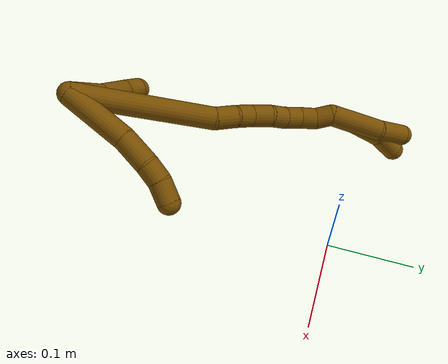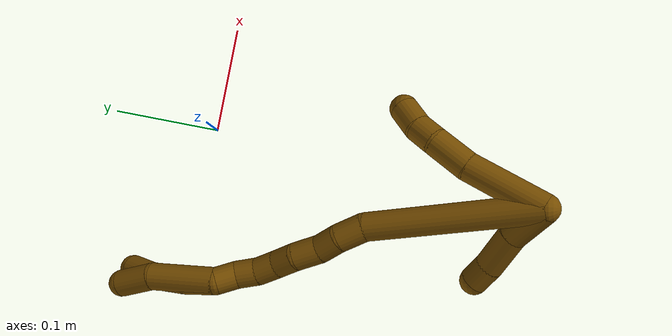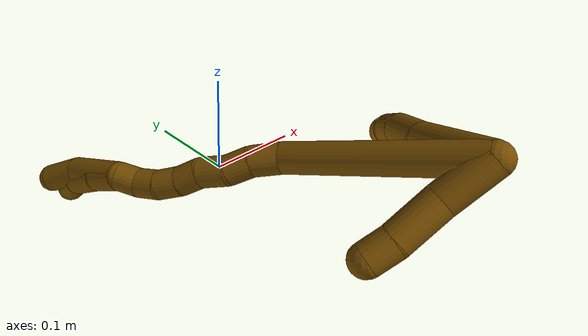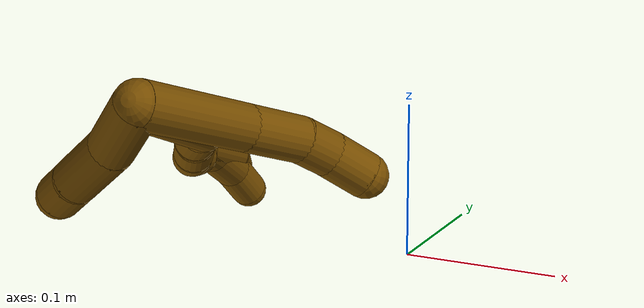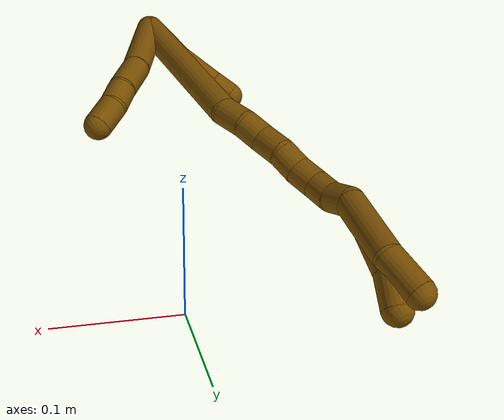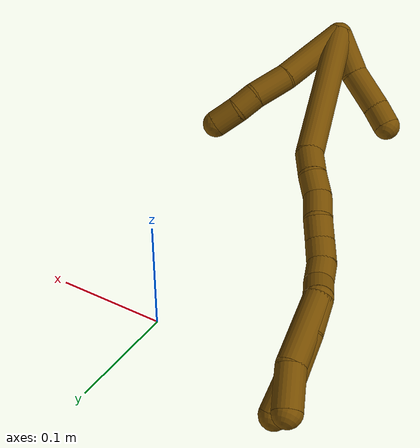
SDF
<sdf version="1.7">
 <world name="default">
  <model name="12">
   <static>0</static>
   <link name="12">
    <collision name="collision-cylinder-e_1_2_8">
     <pose>0.011688 -0.012124 -0.031023 2.76904 0.337482 1.47001</pose>
     <geometry><cylinder><radius>0.0125</radius><length>0.070598</length></cylinder></geometry>
     <surface>
      <friction><ode><mu>1.16</mu><mu2>1.16</mu2><slip1>0</slip1><slip2>0</slip2></ode></friction>
      <contact><ode><kp>1e+06</kp><kd>1</kd><max_vel>0</max_vel><min_depth>0.001</min_depth></ode></contact>
     </surface>
    </collision>
    <visual name="visual-cylinder-e_1_2_8">
     <pose>0.011688 -0.012124 -0.031023 2.76904 0.337482 1.47001</pose>
     <geometry><cylinder><radius>0.0125</radius><length>0.070598</length></cylinder></geometry>
     <material><ambient>0.466667 0.301961 0 1</ambient></material>
    </visual>
    <collision name="collision-cylinder-e_2_8_9">
     <pose>0.030336 -0.032311 -0.075783 2.61077 0.411926 1.31061</pose>
     <geometry><cylinder><radius>0.0125</radius><length>0.034765</length></cylinder></geometry>
     <surface>
      <friction><ode><mu>1.16</mu><mu2>1.16</mu2><slip1>0</slip1><slip2>0</slip2></ode></friction>
      <contact><ode><kp>1e+06</kp><kd>1</kd><max_vel>0</max_vel><min_depth>0.001</min_depth></ode></contact>
     </surface>
    </collision>
    <visual name="visual-cylinder-e_2_8_9">
     <pose>0.030336 -0.032311 -0.075783 2.61077 0.411926 1.31061</pose>
     <geometry><cylinder><radius>0.0125</radius><length>0.034765</length></cylinder></geometry>
     <material><ambient>0.466667 0.301961 0 1</ambient></material>
    </visual>
    <collision name="collision-cylinder-e_3_9_10">
     <pose>0.039718 -0.046409 -0.097569 2.49832 0.236325 0.684523</pose>
     <geometry><cylinder><radius>0.0125</radius><length>0.020695</length></cylinder></geometry>
     <surface>
      <friction><ode><mu>1.16</mu><mu2>1.16</mu2><slip1>0</slip1><slip2>0</slip2></ode></friction>
      <contact><ode><kp>1e+06</kp><kd>1</kd><max_vel>0</max_vel><min_depth>0.001</min_depth></ode></contact>
     </surface>
    </collision>
    <visual name="visual-cylinder-e_3_9_10">
     <pose>0.039718 -0.046409 -0.097569 2.49832 0.236325 0.684523</pose>
     <geometry><cylinder><radius>0.0125</radius><length>0.020695</length></cylinder></geometry>
     <material><ambient>0.466667 0.301961 0 1</ambient></material>
    </visual>
    <collision name="collision-cylinder-e_4_10_6">
     <pose>0.044784 -0.061521 -0.112959 2.2508 0.222695 0.460129</pose>
     <geometry><cylinder><radius>0.0125</radius><length>0.023942</length></cylinder></geometry>
     <surface>
      <friction><ode><mu>1.16</mu><mu2>1.16</mu2><slip1>0</slip1><slip2>0</slip2></ode></friction>
      <contact><ode><kp>1e+06</kp><kd>1</kd><max_vel>0</max_vel><min_depth>0.001</min_depth></ode></contact>
     </surface>
    </collision>
    <visual name="visual-cylinder-e_4_10_6">
     <pose>0.044784 -0.061521 -0.112959 2.2508 0.222695 0.460129</pose>
     <geometry><cylinder><radius>0.0125</radius><length>0.023942</length></cylinder></geometry>
     <material><ambient>0.466667 0.301961 0 1</ambient></material>
    </visual>
    <collision name="collision-cylinder-e_1_2_11">
     <pose>-0.014225 0.002447 -0.014329 -2.97243 -0.774595 2.73172</pose>
     <geometry><cylinder><radius>0.0125</radius><length>0.040677</length></cylinder></geometry>
     <surface>
      <friction><ode><mu>1.16</mu><mu2>1.16</mu2><slip1>0</slip1><slip2>0</slip2></ode></friction>
      <contact><ode><kp>1e+06</kp><kd>1</kd><max_vel>0</max_vel><min_depth>0.001</min_depth></ode></contact>
     </surface>
    </collision>
    <visual name="visual-cylinder-e_1_2_11">
     <pose>-0.014225 0.002447 -0.014329 -2.97243 -0.774595 2.73172</pose>
     <geometry><cylinder><radius>0.0125</radius><length>0.040677</length></cylinder></geometry>
     <material><ambient>0.466667 0.301961 0 1</ambient></material>
    </visual>
    <collision name="collision-cylinder-e_2_11_12">
     <pose>-0.043189 0.009676 -0.03985 -2.73788 -0.880484 2.32195</pose>
     <geometry><cylinder><radius>0.0125</radius><length>0.038228</length></cylinder></geometry>
     <surface>
      <friction><ode><mu>1.16</mu><mu2>1.16</mu2><slip1>0</slip1><slip2>0</slip2></ode></friction>
      <contact><ode><kp>1e+06</kp><kd>1</kd><max_vel>0</max_vel><min_depth>0.001</min_depth></ode></contact>
     </surface>
    </collision>
    <visual name="visual-cylinder-e_2_11_12">
     <pose>-0.043189 0.009676 -0.03985 -2.73788 -0.880484 2.32195</pose>
     <geometry><cylinder><radius>0.0125</radius><length>0.038228</length></cylinder></geometry>
     <material><ambient>0.466667 0.301961 0 1</ambient></material>
    </visual>
    <collision name="collision-cylinder-e_3_12_5">
     <pose>-0.065047 0.017437 -0.058231 -2.74856 -0.741119 2.19449</pose>
     <geometry><cylinder><radius>0.0125</radius><length>0.021095</length></cylinder></geometry>
     <surface>
      <friction><ode><mu>1.16</mu><mu2>1.16</mu2><slip1>0</slip1><slip2>0</slip2></ode></friction>
      <contact><ode><kp>1e+06</kp><kd>1</kd><max_vel>0</max_vel><min_depth>0.001</min_depth></ode></contact>
     </surface>
    </collision>
    <visual name="visual-cylinder-e_3_12_5">
     <pose>-0.065047 0.017437 -0.058231 -2.74856 -0.741119 2.19449</pose>
     <geometry><cylinder><radius>0.0125</radius><length>0.021095</length></cylinder></geometry>
     <material><ambient>0.466667 0.301961 0 1</ambient></material>
    </visual>
    <collision name="collision-cylinder-e_1_2_13">
     <pose>-0.001927 0.010126 -0.073971 -3.00555 -0.025804 0.374346</pose>
     <geometry><cylinder><radius>0.0125</radius><length>0.149372</length></cylinder></geometry>
     <surface>
      <friction><ode><mu>1.16</mu><mu2>1.16</mu2><slip1>0</slip1><slip2>0</slip2></ode></friction>
      <contact><ode><kp>1e+06</kp><kd>1</kd><max_vel>0</max_vel><min_depth>0.001</min_depth></ode></contact>
     </surface>
    </collision>
    <visual name="visual-cylinder-e_1_2_13">
     <pose>-0.001927 0.010126 -0.073971 -3.00555 -0.025804 0.374346</pose>
     <geometry><cylinder><radius>0.0125</radius><length>0.149372</length></cylinder></geometry>
     <material><ambient>0.466667 0.301961 0 1</ambient></material>
    </visual>
    <collision name="collision-cylinder-e_2_13_14">
     <pose>-0.006435 0.024638 -0.159154 -2.76867 -0.211183 1.02372</pose>
     <geometry><cylinder><radius>0.0125</radius><length>0.024624</length></cylinder></geometry>
     <surface>
      <friction><ode><mu>1.16</mu><mu2>1.16</mu2><slip1>0</slip1><slip2>0</slip2></ode></friction>
      <contact><ode><kp>1e+06</kp><kd>1</kd><max_vel>0</max_vel><min_depth>0.001</min_depth></ode></contact>
     </surface>
    </collision>
    <visual name="visual-cylinder-e_2_13_14">
     <pose>-0.006435 0.024638 -0.159154 -2.76867 -0.211183 1.02372</pose>
     <geometry><cylinder><radius>0.0125</radius><length>0.024624</length></cylinder></geometry>
     <material><ambient>0.466667 0.301961 0 1</ambient></material>
    </visual>
    <collision name="collision-cylinder-e_3_14_15">
     <pose>-0.013471 0.031645 -0.179391 -2.85898 -0.442681 2.01413</pose>
     <geometry><cylinder><radius>0.0125</radius><length>0.020803</length></cylinder></geometry>
     <surface>
      <friction><ode><mu>1.16</mu><mu2>1.16</mu2><slip1>0</slip1><slip2>0</slip2></ode></friction>
      <contact><ode><kp>1e+06</kp><kd>1</kd><max_vel>0</max_vel><min_depth>0.001</min_depth></ode></contact>
     </surface>
    </collision>
    <visual name="visual-cylinder-e_3_14_15">
     <pose>-0.013471 0.031645 -0.179391 -2.85898 -0.442681 2.01413</pose>
     <geometry><cylinder><radius>0.0125</radius><length>0.020803</length></cylinder></geometry>
     <material><ambient>0.466667 0.301961 0 1</ambient></material>
    </visual>
    <collision name="collision-cylinder-e_4_15_16">
     <pose>-0.019809 0.037591 -0.199683 -2.85464 -0.158894 1.00734</pose>
     <geometry><cylinder><radius>0.0125</radius><length>0.023794</length></cylinder></geometry>
     <surface>
      <friction><ode><mu>1.16</mu><mu2>1.16</mu2><slip1>0</slip1><slip2>0</slip2></ode></friction>
      <contact><ode><kp>1e+06</kp><kd>1</kd><max_vel>0</max_vel><min_depth>0.001</min_depth></ode></contact>
     </surface>
    </collision>
    <visual name="visual-cylinder-e_4_15_16">
     <pose>-0.019809 0.037591 -0.199683 -2.85464 -0.158894 1.00734</pose>
     <geometry><cylinder><radius>0.0125</radius><length>0.023794</length></cylinder></geometry>
     <material><ambient>0.466667 0.301961 0 1</ambient></material>
    </visual>
    <collision name="collision-cylinder-e_5_16_17">
     <pose>-0.025671 0.042205 -0.220313 -3.00473 -0.398463 2.48712</pose>
     <geometry><cylinder><radius>0.0125</radius><length>0.02051</length></cylinder></geometry>
     <surface>
      <friction><ode><mu>1.16</mu><mu2>1.16</mu2><slip1>0</slip1><slip2>0</slip2></ode></friction>
      <contact><ode><kp>1e+06</kp><kd>1</kd><max_vel>0</max_vel><min_depth>0.001</min_depth></ode></contact>
     </surface>
    </collision>
    <visual name="visual-cylinder-e_5_16_17">
     <pose>-0.025671 0.042205 -0.220313 -3.00473 -0.398463 2.48712</pose>
     <geometry><cylinder><radius>0.0125</radius><length>0.02051</length></cylinder></geometry>
     <material><ambient>0.466667 0.301961 0 1</ambient></material>
    </visual>
    <collision name="collision-cylinder-e_6_17_18">
     <pose>-0.032243 0.04621 -0.239372 -2.86854 -0.252092 1.49007</pose>
     <geometry><cylinder><radius>0.0125</radius><length>0.020794</length></cylinder></geometry>
     <surface>
      <friction><ode><mu>1.16</mu><mu2>1.16</mu2><slip1>0</slip1><slip2>0</slip2></ode></friction>
      <contact><ode><kp>1e+06</kp><kd>1</kd><max_vel>0</max_vel><min_depth>0.001</min_depth></ode></contact>
     </surface>
    </collision>
    <visual name="visual-cylinder-e_6_17_18">
     <pose>-0.032243 0.04621 -0.239372 -2.86854 -0.252092 1.49007</pose>
     <geometry><cylinder><radius>0.0125</radius><length>0.020794</length></cylinder></geometry>
     <material><ambient>0.466667 0.301961 0 1</ambient></material>
    </visual>
    <collision name="collision-cylinder-e_7_18_19">
     <pose>-0.034814 0.05134 -0.258805 -2.89851 0.002261 -0.018507</pose>
     <geometry><cylinder><radius>0.0125</radius><length>0.020065</length></cylinder></geometry>
     <surface>
      <friction><ode><mu>1.16</mu><mu2>1.16</mu2><slip1>0</slip1><slip2>0</slip2></ode></friction>
      <contact><ode><kp>1e+06</kp><kd>1</kd><max_vel>0</max_vel><min_depth>0.001</min_depth></ode></contact>
     </surface>
    </collision>
    <visual name="visual-cylinder-e_7_18_19">
     <pose>-0.034814 0.05134 -0.258805 -2.89851 0.002261 -0.018507</pose>
     <geometry><cylinder><radius>0.0125</radius><length>0.020065</length></cylinder></geometry>
     <material><ambient>0.466667 0.301961 0 1</ambient></material>
    </visual>
    <collision name="collision-cylinder-e_8_19_1">
     <pose>-0.033371 0.058893 -0.277026 -2.59699 0.142146 -0.49927</pose>
     <geometry><cylinder><radius>0.0125</radius><length>0.020038</length></cylinder></geometry>
     <surface>
      <friction><ode><mu>1.16</mu><mu2>1.16</mu2><slip1>0</slip1><slip2>0</slip2></ode></friction>
      <contact><ode><kp>1e+06</kp><kd>1</kd><max_vel>0</max_vel><min_depth>0.001</min_depth></ode></contact>
     </surface>
    </collision>
    <visual name="visual-cylinder-e_8_19_1">
     <pose>-0.033371 0.058893 -0.277026 -2.59699 0.142146 -0.49927</pose>
     <geometry><cylinder><radius>0.0125</radius><length>0.020038</length></cylinder></geometry>
     <material><ambient>0.466667 0.301961 0 1</ambient></material>
    </visual>
    <collision name="collision-cylinder-e_1_1_20">
     <pose>-0.029899 0.064582 -0.317237 -3.12425 0.064611 -2.61723</pose>
     <geometry><cylinder><radius>0.0125</radius><length>0.0636</length></cylinder></geometry>
     <surface>
      <friction><ode><mu>1.16</mu><mu2>1.16</mu2><slip1>0</slip1><slip2>0</slip2></ode></friction>
      <contact><ode><kp>1e+06</kp><kd>1</kd><max_vel>0</max_vel><min_depth>0.001</min_depth></ode></contact>
     </surface>
    </collision>
    <visual name="visual-cylinder-e_1_1_20">
     <pose>-0.029899 0.064582 -0.317237 -3.12425 0.064611 -2.61723</pose>
     <geometry><cylinder><radius>0.0125</radius><length>0.0636</length></cylinder></geometry>
     <material><ambient>0.466667 0.301961 0 1</ambient></material>
    </visual>
    <collision name="collision-cylinder-e_2_20_4">
     <pose>-0.031922 0.066976 -0.366608 -3.03744 -0.225897 2.28014</pose>
     <geometry><cylinder><radius>0.0125</radius><length>0.0364</length></cylinder></geometry>
     <surface>
      <friction><ode><mu>1.16</mu><mu2>1.16</mu2><slip1>0</slip1><slip2>0</slip2></ode></friction>
      <contact><ode><kp>1e+06</kp><kd>1</kd><max_vel>0</max_vel><min_depth>0.001</min_depth></ode></contact>
     </surface>
    </collision>
    <visual name="visual-cylinder-e_2_20_4">
     <pose>-0.031922 0.066976 -0.366608 -3.03744 -0.225897 2.28014</pose>
     <geometry><cylinder><radius>0.0125</radius><length>0.0364</length></cylinder></geometry>
     <material><ambient>0.466667 0.301961 0 1</ambient></material>
    </visual>
    <collision name="collision-cylinder-e_1_1_21">
     <pose>-0.032546 0.064128 -0.301099 -3.13539 -0.038059 2.81857</pose>
     <geometry><cylinder><radius>0.0125</radius><length>0.031203</length></cylinder></geometry>
     <surface>
      <friction><ode><mu>1.16</mu><mu2>1.16</mu2><slip1>0</slip1><slip2>0</slip2></ode></friction>
      <contact><ode><kp>1e+06</kp><kd>1</kd><max_vel>0</max_vel><min_depth>0.001</min_depth></ode></contact>
     </surface>
    </collision>
    <visual name="visual-cylinder-e_1_1_21">
     <pose>-0.032546 0.064128 -0.301099 -3.13539 -0.038059 2.81857</pose>
     <geometry><cylinder><radius>0.0125</radius><length>0.031203</length></cylinder></geometry>
     <material><ambient>0.466667 0.301961 0 1</ambient></material>
    </visual>
    <collision name="collision-cylinder-e_2_21_22">
     <pose>-0.034354 0.061536 -0.336204 3.00468 -0.061598 -0.844601</pose>
     <geometry><cylinder><radius>0.0125</radius><length>0.039475</length></cylinder></geometry>
     <surface>
      <friction><ode><mu>1.16</mu><mu2>1.16</mu2><slip1>0</slip1><slip2>0</slip2></ode></friction>
      <contact><ode><kp>1e+06</kp><kd>1</kd><max_vel>0</max_vel><min_depth>0.001</min_depth></ode></contact>
     </surface>
    </collision>
    <visual name="visual-cylinder-e_2_21_22">
     <pose>-0.034354 0.061536 -0.336204 3.00468 -0.061598 -0.844601</pose>
     <geometry><cylinder><radius>0.0125</radius><length>0.039475</length></cylinder></geometry>
     <material><ambient>0.466667 0.301961 0 1</ambient></material>
    </visual>
    <collision name="collision-cylinder-e_3_22_3">
     <pose>-0.037698 0.053542 -0.369221 2.76717 -0.145704 -0.735485</pose>
     <geometry><cylinder><radius>0.0125</radius><length>0.029322</length></cylinder></geometry>
     <surface>
      <friction><ode><mu>1.16</mu><mu2>1.16</mu2><slip1>0</slip1><slip2>0</slip2></ode></friction>
      <contact><ode><kp>1e+06</kp><kd>1</kd><max_vel>0</max_vel><min_depth>0.001</min_depth></ode></contact>
     </surface>
    </collision>
    <visual name="visual-cylinder-e_3_22_3">
     <pose>-0.037698 0.053542 -0.369221 2.76717 -0.145704 -0.735485</pose>
     <geometry><cylinder><radius>0.0125</radius><length>0.029322</length></cylinder></geometry>
     <material><ambient>0.466667 0.301961 0 1</ambient></material>
    </visual>
    <collision name="collision-sphere-3">
     <pose>-0.039827 0.048237 -0.382721 0 -0 0</pose>
     <geometry><sphere><radius>0.0125</radius></sphere></geometry>
     <surface>
      <friction><ode><mu>1.16</mu><mu2>1.16</mu2><slip1>0</slip1><slip2>0</slip2></ode></friction>
      <contact><ode><kp>1e+06</kp><kd>1</kd><max_vel>0</max_vel><min_depth>0.001</min_depth></ode></contact>
     </surface>
    </collision>
    <visual name="visual-sphere-3">
     <pose>-0.039827 0.048237 -0.382721 0 -0 0</pose>
     <geometry><sphere><radius>0.0125</radius></sphere></geometry>
     <material><ambient>0.466667 0.301961 0 1</ambient></material>
    </visual>
    <collision name="collision-sphere-22">
     <pose>-0.035569 0.058847 -0.35572 0 -0 0</pose>
     <geometry><sphere><radius>0.0125</radius></sphere></geometry>
     <surface>
      <friction><ode><mu>1.16</mu><mu2>1.16</mu2><slip1>0</slip1><slip2>0</slip2></ode></friction>
      <contact><ode><kp>1e+06</kp><kd>1</kd><max_vel>0</max_vel><min_depth>0.001</min_depth></ode></contact>
     </surface>
    </collision>
    <visual name="visual-sphere-22">
     <pose>-0.035569 0.058847 -0.35572 0 -0 0</pose>
     <geometry><sphere><radius>0.0125</radius></sphere></geometry>
     <material><ambient>0.466667 0.301961 0 1</ambient></material>
    </visual>
    <collision name="collision-sphere-21">
     <pose>-0.033139 0.064225 -0.316688 0 -0 0</pose>
     <geometry><sphere><radius>0.0125</radius></sphere></geometry>
     <surface>
      <friction><ode><mu>1.16</mu><mu2>1.16</mu2><slip1>0</slip1><slip2>0</slip2></ode></friction>
      <contact><ode><kp>1e+06</kp><kd>1</kd><max_vel>0</max_vel><min_depth>0.001</min_depth></ode></contact>
     </surface>
    </collision>
    <visual name="visual-sphere-21">
     <pose>-0.033139 0.064225 -0.316688 0 -0 0</pose>
     <geometry><sphere><radius>0.0125</radius></sphere></geometry>
     <material><ambient>0.466667 0.301961 0 1</ambient></material>
    </visual>
    <collision name="collision-sphere-4">
     <pose>-0.035999 0.06882 -0.384249 0 -0 0</pose>
     <geometry><sphere><radius>0.0125</radius></sphere></geometry>
     <surface>
      <friction><ode><mu>1.16</mu><mu2>1.16</mu2><slip1>0</slip1><slip2>0</slip2></ode></friction>
      <contact><ode><kp>1e+06</kp><kd>1</kd><max_vel>0</max_vel><min_depth>0.001</min_depth></ode></contact>
     </surface>
    </collision>
    <visual name="visual-sphere-4">
     <pose>-0.035999 0.06882 -0.384249 0 -0 0</pose>
     <geometry><sphere><radius>0.0125</radius></sphere></geometry>
     <material><ambient>0.466667 0.301961 0 1</ambient></material>
    </visual>
    <collision name="collision-sphere-20">
     <pose>-0.027846 0.065132 -0.348966 0 -0 0</pose>
     <geometry><sphere><radius>0.0125</radius></sphere></geometry>
     <surface>
      <friction><ode><mu>1.16</mu><mu2>1.16</mu2><slip1>0</slip1><slip2>0</slip2></ode></friction>
      <contact><ode><kp>1e+06</kp><kd>1</kd><max_vel>0</max_vel><min_depth>0.001</min_depth></ode></contact>
     </surface>
    </collision>
    <visual name="visual-sphere-20">
     <pose>-0.027846 0.065132 -0.348966 0 -0 0</pose>
     <geometry><sphere><radius>0.0125</radius></sphere></geometry>
     <material><ambient>0.466667 0.301961 0 1</ambient></material>
    </visual>
    <collision name="collision-sphere-11">
     <pose>-0.028451 0.004894 -0.028657 0 -0 0</pose>
     <geometry><sphere><radius>0.0125</radius></sphere></geometry>
     <surface>
      <friction><ode><mu>1.16</mu><mu2>1.16</mu2><slip1>0</slip1><slip2>0</slip2></ode></friction>
      <contact><ode><kp>1e+06</kp><kd>1</kd><max_vel>0</max_vel><min_depth>0.001</min_depth></ode></contact>
     </surface>
    </collision>
    <visual name="visual-sphere-11">
     <pose>-0.028451 0.004894 -0.028657 0 -0 0</pose>
     <geometry><sphere><radius>0.0125</radius></sphere></geometry>
     <material><ambient>0.466667 0.301961 0 1</ambient></material>
    </visual>
    <collision name="collision-sphere-6">
     <pose>0.047428 -0.0706 -0.120301 0 -0 0</pose>
     <geometry><sphere><radius>0.0125</radius></sphere></geometry>
     <surface>
      <friction><ode><mu>1.16</mu><mu2>1.16</mu2><slip1>0</slip1><slip2>0</slip2></ode></friction>
      <contact><ode><kp>1e+06</kp><kd>1</kd><max_vel>0</max_vel><min_depth>0.001</min_depth></ode></contact>
     </surface>
    </collision>
    <visual name="visual-sphere-6">
     <pose>0.047428 -0.0706 -0.120301 0 -0 0</pose>
     <geometry><sphere><radius>0.0125</radius></sphere></geometry>
     <material><ambient>0.466667 0.301961 0 1</ambient></material>
    </visual>
    <collision name="collision-sphere-10">
     <pose>0.04214 -0.052443 -0.105618 0 -0 0</pose>
     <geometry><sphere><radius>0.0125</radius></sphere></geometry>
     <surface>
      <friction><ode><mu>1.16</mu><mu2>1.16</mu2><slip1>0</slip1><slip2>0</slip2></ode></friction>
      <contact><ode><kp>1e+06</kp><kd>1</kd><max_vel>0</max_vel><min_depth>0.001</min_depth></ode></contact>
     </surface>
    </collision>
    <visual name="visual-sphere-10">
     <pose>0.04214 -0.052443 -0.105618 0 -0 0</pose>
     <geometry><sphere><radius>0.0125</radius></sphere></geometry>
     <material><ambient>0.466667 0.301961 0 1</ambient></material>
    </visual>
    <collision name="collision-sphere-9">
     <pose>0.037295 -0.040375 -0.089519 0 -0 0</pose>
     <geometry><sphere><radius>0.0125</radius></sphere></geometry>
     <surface>
      <friction><ode><mu>1.16</mu><mu2>1.16</mu2><slip1>0</slip1><slip2>0</slip2></ode></friction>
      <contact><ode><kp>1e+06</kp><kd>1</kd><max_vel>0</max_vel><min_depth>0.001</min_depth></ode></contact>
     </surface>
    </collision>
    <visual name="visual-sphere-9">
     <pose>0.037295 -0.040375 -0.089519 0 -0 0</pose>
     <geometry><sphere><radius>0.0125</radius></sphere></geometry>
     <material><ambient>0.466667 0.301961 0 1</ambient></material>
    </visual>
    <collision name="collision-sphere-2">
     <geometry><sphere><radius>0.0125</radius></sphere></geometry>
     <surface>
      <friction><ode><mu>1.16</mu><mu2>1.16</mu2><slip1>0</slip1><slip2>0</slip2></ode></friction>
      <contact><ode><kp>1e+06</kp><kd>1</kd><max_vel>0</max_vel><min_depth>0.001</min_depth></ode></contact>
     </surface>
    </collision>
    <visual name="visual-sphere-2">
     <geometry><sphere><radius>0.0125</radius></sphere></geometry>
     <material><ambient>0.466667 0.301961 0 1</ambient></material>
    </visual>
    <collision name="collision-sphere-19">
     <pose>-0.034791 0.053755 -0.268542 0 -0 0</pose>
     <geometry><sphere><radius>0.0125</radius></sphere></geometry>
     <surface>
      <friction><ode><mu>1.16</mu><mu2>1.16</mu2><slip1>0</slip1><slip2>0</slip2></ode></friction>
      <contact><ode><kp>1e+06</kp><kd>1</kd><max_vel>0</max_vel><min_depth>0.001</min_depth></ode></contact>
     </surface>
    </collision>
    <visual name="visual-sphere-19">
     <pose>-0.034791 0.053755 -0.268542 0 -0 0</pose>
     <geometry><sphere><radius>0.0125</radius></sphere></geometry>
     <material><ambient>0.466667 0.301961 0 1</ambient></material>
    </visual>
    <collision name="collision-sphere-8">
     <pose>0.023376 -0.024248 -0.062046 0 -0 0</pose>
     <geometry><sphere><radius>0.0125</radius></sphere></geometry>
     <surface>
      <friction><ode><mu>1.16</mu><mu2>1.16</mu2><slip1>0</slip1><slip2>0</slip2></ode></friction>
      <contact><ode><kp>1e+06</kp><kd>1</kd><max_vel>0</max_vel><min_depth>0.001</min_depth></ode></contact>
     </surface>
    </collision>
    <visual name="visual-sphere-8">
     <pose>0.023376 -0.024248 -0.062046 0 -0 0</pose>
     <geometry><sphere><radius>0.0125</radius></sphere></geometry>
     <material><ambient>0.466667 0.301961 0 1</ambient></material>
    </visual>
    <collision name="collision-sphere-12">
     <pose>-0.057926 0.014457 -0.051043 0 -0 0</pose>
     <geometry><sphere><radius>0.0125</radius></sphere></geometry>
     <surface>
      <friction><ode><mu>1.16</mu><mu2>1.16</mu2><slip1>0</slip1><slip2>0</slip2></ode></friction>
      <contact><ode><kp>1e+06</kp><kd>1</kd><max_vel>0</max_vel><min_depth>0.001</min_depth></ode></contact>
     </surface>
    </collision>
    <visual name="visual-sphere-12">
     <pose>-0.057926 0.014457 -0.051043 0 -0 0</pose>
     <geometry><sphere><radius>0.0125</radius></sphere></geometry>
     <material><ambient>0.466667 0.301961 0 1</ambient></material>
    </visual>
    <collision name="collision-sphere-5">
     <pose>-0.072168 0.020417 -0.065418 0 -0 0</pose>
     <geometry><sphere><radius>0.0125</radius></sphere></geometry>
     <surface>
      <friction><ode><mu>1.16</mu><mu2>1.16</mu2><slip1>0</slip1><slip2>0</slip2></ode></friction>
      <contact><ode><kp>1e+06</kp><kd>1</kd><max_vel>0</max_vel><min_depth>0.001</min_depth></ode></contact>
     </surface>
    </collision>
    <visual name="visual-sphere-5">
     <pose>-0.072168 0.020417 -0.065418 0 -0 0</pose>
     <geometry><sphere><radius>0.0125</radius></sphere></geometry>
     <material><ambient>0.466667 0.301961 0 1</ambient></material>
    </visual>
    <collision name="collision-sphere-13">
     <pose>-0.003854 0.020252 -0.147943 0 -0 0</pose>
     <geometry><sphere><radius>0.0125</radius></sphere></geometry>
     <surface>
      <friction><ode><mu>1.16</mu><mu2>1.16</mu2><slip1>0</slip1><slip2>0</slip2></ode></friction>
      <contact><ode><kp>1e+06</kp><kd>1</kd><max_vel>0</max_vel><min_depth>0.001</min_depth></ode></contact>
     </surface>
    </collision>
    <visual name="visual-sphere-13">
     <pose>-0.003854 0.020252 -0.147943 0 -0 0</pose>
     <geometry><sphere><radius>0.0125</radius></sphere></geometry>
     <material><ambient>0.466667 0.301961 0 1</ambient></material>
    </visual>
    <collision name="collision-sphere-14">
     <pose>-0.009016 0.029024 -0.170365 0 -0 0</pose>
     <geometry><sphere><radius>0.0125</radius></sphere></geometry>
     <surface>
      <friction><ode><mu>1.16</mu><mu2>1.16</mu2><slip1>0</slip1><slip2>0</slip2></ode></friction>
      <contact><ode><kp>1e+06</kp><kd>1</kd><max_vel>0</max_vel><min_depth>0.001</min_depth></ode></contact>
     </surface>
    </collision>
    <visual name="visual-sphere-14">
     <pose>-0.009016 0.029024 -0.170365 0 -0 0</pose>
     <geometry><sphere><radius>0.0125</radius></sphere></geometry>
     <material><ambient>0.466667 0.301961 0 1</ambient></material>
    </visual>
    <collision name="collision-sphere-15">
     <pose>-0.017927 0.034266 -0.188417 0 -0 0</pose>
     <geometry><sphere><radius>0.0125</radius></sphere></geometry>
     <surface>
      <friction><ode><mu>1.16</mu><mu2>1.16</mu2><slip1>0</slip1><slip2>0</slip2></ode></friction>
      <contact><ode><kp>1e+06</kp><kd>1</kd><max_vel>0</max_vel><min_depth>0.001</min_depth></ode></contact>
     </surface>
    </collision>
    <visual name="visual-sphere-15">
     <pose>-0.017927 0.034266 -0.188417 0 -0 0</pose>
     <geometry><sphere><radius>0.0125</radius></sphere></geometry>
     <material><ambient>0.466667 0.301961 0 1</ambient></material>
    </visual>
    <collision name="collision-sphere-16">
     <pose>-0.021691 0.040916 -0.21095 0 -0 0</pose>
     <geometry><sphere><radius>0.0125</radius></sphere></geometry>
     <surface>
      <friction><ode><mu>1.16</mu><mu2>1.16</mu2><slip1>0</slip1><slip2>0</slip2></ode></friction>
      <contact><ode><kp>1e+06</kp><kd>1</kd><max_vel>0</max_vel><min_depth>0.001</min_depth></ode></contact>
     </surface>
    </collision>
    <visual name="visual-sphere-16">
     <pose>-0.021691 0.040916 -0.21095 0 -0 0</pose>
     <geometry><sphere><radius>0.0125</radius></sphere></geometry>
     <material><ambient>0.466667 0.301961 0 1</ambient></material>
    </visual>
    <collision name="collision-sphere-17">
     <pose>-0.02965 0.043495 -0.229677 0 -0 0</pose>
     <geometry><sphere><radius>0.0125</radius></sphere></geometry>
     <surface>
      <friction><ode><mu>1.16</mu><mu2>1.16</mu2><slip1>0</slip1><slip2>0</slip2></ode></friction>
      <contact><ode><kp>1e+06</kp><kd>1</kd><max_vel>0</max_vel><min_depth>0.001</min_depth></ode></contact>
     </surface>
    </collision>
    <visual name="visual-sphere-17">
     <pose>-0.02965 0.043495 -0.229677 0 -0 0</pose>
     <geometry><sphere><radius>0.0125</radius></sphere></geometry>
     <material><ambient>0.466667 0.301961 0 1</ambient></material>
    </visual>
    <collision name="collision-sphere-18">
     <pose>-0.034836 0.048925 -0.249067 0 -0 0</pose>
     <geometry><sphere><radius>0.0125</radius></sphere></geometry>
     <surface>
      <friction><ode><mu>1.16</mu><mu2>1.16</mu2><slip1>0</slip1><slip2>0</slip2></ode></friction>
      <contact><ode><kp>1e+06</kp><kd>1</kd><max_vel>0</max_vel><min_depth>0.001</min_depth></ode></contact>
     </surface>
    </collision>
    <visual name="visual-sphere-18">
     <pose>-0.034836 0.048925 -0.249067 0 -0 0</pose>
     <geometry><sphere><radius>0.0125</radius></sphere></geometry>
     <material><ambient>0.466667 0.301961 0 1</ambient></material>
    </visual>
    <collision name="collision-sphere-1">
     <pose>-0.031952 0.064031 -0.285509 0 -0 0</pose>
     <geometry><sphere><radius>0.0125</radius></sphere></geometry>
     <surface>
      <friction><ode><mu>1.16</mu><mu2>1.16</mu2><slip1>0</slip1><slip2>0</slip2></ode></friction>
      <contact><ode><kp>1e+06</kp><kd>1</kd><max_vel>0</max_vel><min_depth>0.001</min_depth></ode></contact>
     </surface>
    </collision>
    <visual name="visual-sphere-1">
     <pose>-0.031952 0.064031 -0.285509 0 -0 0</pose>
     <geometry><sphere><radius>0.0125</radius></sphere></geometry>
     <material><ambient>0.466667 0.301961 0 1</ambient></material>
    </visual>
    <inertial>
     <pose>-0.013507 0.022238 -0.164785 0 -0 0</pose>
     <mass>0.75</mass>
     <inertia>
      <ixx>0.000378</ixx>
      <ixy>0</ixy>
      <ixz>0</ixz>
      <iyy>-9.1e-05</iyy>
      <iyz>0</iyz>
      <izz>-7.2e-05</izz>
     </inertia>
    </inertial>
   </link>
   <pose>-0.019098 -0.285938 0.156929 1.0179 -0.757355 0.584082</pose>
  </model>
 </world>
</sdf>
